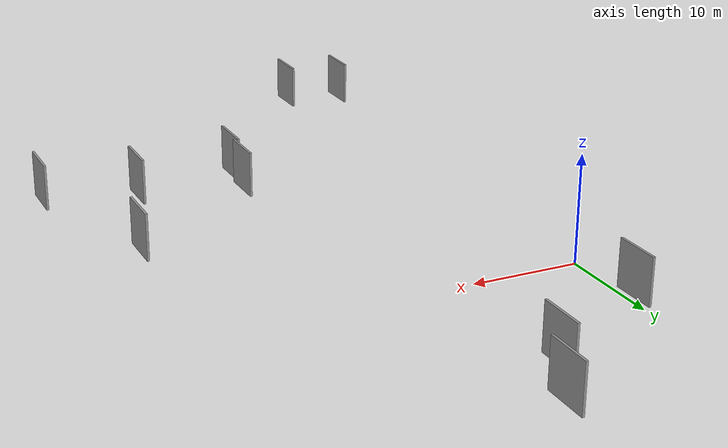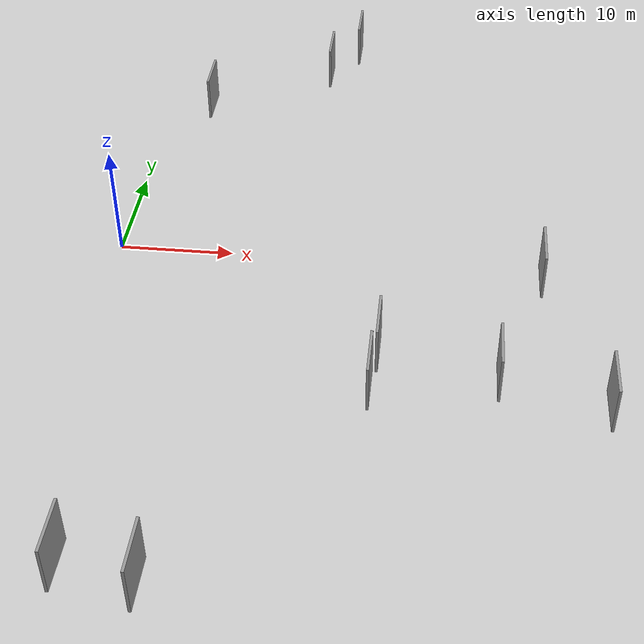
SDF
<sdf version="1.6">
 <world name="default">
  <scene>
   <sky><clouds><speed>12</speed></clouds></sky>
   <ambient>0.4 0.4 0.4 1</ambient>
   <background>0.7 0.7 0.7 1</background>
   <shadows>1</shadows>
  </scene>
  <gravity>0 0 -9.8066</gravity>
  <magnetic_field>6e-06 2.3e-05 -4.2e-05</magnetic_field>
  <physics default="0" name="default_physics" type="ode">
   <ode>
    <solver>
     <type>quick</type>
     <iters>10</iters>
     <sor>1.0</sor>
     <use_dynamic_moi_rescaling>0</use_dynamic_moi_rescaling>
    </solver>
    <constraints>
     <cfm>0</cfm>
     <erp>0.2</erp>
     <contact_max_correcting_vel>100</contact_max_correcting_vel>
     <contact_surface_layer>0.001</contact_surface_layer>
    </constraints>
   </ode>
   <max_step_size>0.004</max_step_size>
   <real_time_factor>1</real_time_factor>
   <real_time_update_rate>250</real_time_update_rate>
  </physics>
  <light name="sun" type="directional">
   <pose>0 0 10 0 0 0</pose>
   <diffuse>0.8 0.8 0.8 1</diffuse>
   <specular>0.2 0.2 0.2 1</specular>
   <attenuation>
    <range>1000</range>
    <constant>0.9</constant>
    <linear>0.01</linear>
    <quadratic>0.001</quadratic>
   </attenuation>
   <direction>-0.5 0.1 -0.9</direction>
  </light>
  <model name="grey_wall_1">
   <static>1</static>
   <pose>5.3921 -37.1609 5.0 0.000000 0.000000 1.570796</pose>
   <link name="link">
    <pose>0 0 2.00 0 0 0</pose>
    <collision name="collision"><geometry><box><size>4.00 0.2 4.00</size></box></geometry></collision>
    <visual name="visual">
     <cast_shadows>0</cast_shadows>
     <geometry><box><size>4.00 0.2 4.00</size></box></geometry>
     <material>
      <script>
       <uri>model://grey_wall/materials/scripts</uri>
       <uri>model://grey_wall/materials/textures</uri>
       <name>vrc/grey_wall</name>
      </script>
     </material>
    </visual>
   </link>
  </model>
  <model name="grey_wall_2">
   <static>1</static>
   <pose>24.0401 -16.4125 5.0 0.000000 0.000000 1.570796</pose>
   <link name="link">
    <pose>0 0 2.00 0 0 0</pose>
    <collision name="collision"><geometry><box><size>4.00 0.2 4.00</size></box></geometry></collision>
    <visual name="visual">
     <cast_shadows>0</cast_shadows>
     <geometry><box><size>4.00 0.2 4.00</size></box></geometry>
     <material>
      <script>
       <uri>model://grey_wall/materials/scripts</uri>
       <uri>model://grey_wall/materials/textures</uri>
       <name>vrc/grey_wall</name>
      </script>
     </material>
    </visual>
   </link>
  </model>
  <model name="grey_wall_3">
   <static>1</static>
   <pose>5.7872 16.0140 5.0 0.000000 0.000000 1.570796</pose>
   <link name="link">
    <pose>0 0 2.00 0 0 0</pose>
    <collision name="collision"><geometry><box><size>4.00 0.2 4.00</size></box></geometry></collision>
    <visual name="visual">
     <cast_shadows>0</cast_shadows>
     <geometry><box><size>4.00 0.2 4.00</size></box></geometry>
     <material>
      <script>
       <uri>model://grey_wall/materials/scripts</uri>
       <uri>model://grey_wall/materials/textures</uri>
       <name>vrc/grey_wall</name>
      </script>
     </material>
    </visual>
   </link>
  </model>
  <model name="grey_wall_4">
   <static>1</static>
   <pose>16.5716 22.6350 5.0 0.000000 0.000000 1.570796</pose>
   <link name="link">
    <pose>0 0 2.00 0 0 0</pose>
    <collision name="collision"><geometry><box><size>4.00 0.2 4.00</size></box></geometry></collision>
    <visual name="visual">
     <cast_shadows>0</cast_shadows>
     <geometry><box><size>4.00 0.2 4.00</size></box></geometry>
     <material>
      <script>
       <uri>model://grey_wall/materials/scripts</uri>
       <uri>model://grey_wall/materials/textures</uri>
       <name>vrc/grey_wall</name>
      </script>
     </material>
    </visual>
   </link>
  </model>
  <model name="grey_wall_5">
   <static>1</static>
   <pose>10.7719 -38.0510 5.0 0.000000 0.000000 1.570796</pose>
   <link name="link">
    <pose>0 0 2.00 0 0 0</pose>
    <collision name="collision"><geometry><box><size>4.00 0.2 4.00</size></box></geometry></collision>
    <visual name="visual">
     <cast_shadows>0</cast_shadows>
     <geometry><box><size>4.00 0.2 4.00</size></box></geometry>
     <material>
      <script>
       <uri>model://grey_wall/materials/scripts</uri>
       <uri>model://grey_wall/materials/textures</uri>
       <name>vrc/grey_wall</name>
      </script>
     </material>
    </visual>
   </link>
  </model>
  <model name="grey_wall_6">
   <static>1</static>
   <pose>36.3868 -6.9663 5.0 0.000000 0.000000 1.570796</pose>
   <link name="link">
    <pose>0 0 2.00 0 0 0</pose>
    <collision name="collision"><geometry><box><size>4.00 0.2 4.00</size></box></geometry></collision>
    <visual name="visual">
     <cast_shadows>0</cast_shadows>
     <geometry><box><size>4.00 0.2 4.00</size></box></geometry>
     <material>
      <script>
       <uri>model://grey_wall/materials/scripts</uri>
       <uri>model://grey_wall/materials/textures</uri>
       <name>vrc/grey_wall</name>
      </script>
     </material>
    </visual>
   </link>
  </model>
  <model name="grey_wall_7">
   <static>1</static>
   <pose>23.6668 -20.2544 5.0 0.000000 0.000000 1.570796</pose>
   <link name="link">
    <pose>0 0 2.00 0 0 0</pose>
    <collision name="collision"><geometry><box><size>4.00 0.2 4.00</size></box></geometry></collision>
    <visual name="visual">
     <cast_shadows>0</cast_shadows>
     <geometry><box><size>4.00 0.2 4.00</size></box></geometry>
     <material>
      <script>
       <uri>model://grey_wall/materials/scripts</uri>
       <uri>model://grey_wall/materials/textures</uri>
       <name>vrc/grey_wall</name>
      </script>
     </material>
    </visual>
   </link>
  </model>
  <model name="grey_wall_8">
   <static>1</static>
   <pose>19.0308 27.2414 5.0 0.000000 0.000000 1.570796</pose>
   <link name="link">
    <pose>0 0 2.00 0 0 0</pose>
    <collision name="collision"><geometry><box><size>4.00 0.2 4.00</size></box></geometry></collision>
    <visual name="visual">
     <cast_shadows>0</cast_shadows>
     <geometry><box><size>4.00 0.2 4.00</size></box></geometry>
     <material>
      <script>
       <uri>model://grey_wall/materials/scripts</uri>
       <uri>model://grey_wall/materials/textures</uri>
       <name>vrc/grey_wall</name>
      </script>
     </material>
    </visual>
   </link>
  </model>
  <model name="grey_wall_9">
   <static>1</static>
   <pose>40.8585 -20.6324 5.0 0.000000 0.000000 1.570796</pose>
   <link name="link">
    <pose>0 0 2.00 0 0 0</pose>
    <collision name="collision"><geometry><box><size>4.00 0.2 4.00</size></box></geometry></collision>
    <visual name="visual">
     <cast_shadows>0</cast_shadows>
     <geometry><box><size>4.00 0.2 4.00</size></box></geometry>
     <material>
      <script>
       <uri>model://grey_wall/materials/scripts</uri>
       <uri>model://grey_wall/materials/textures</uri>
       <name>vrc/grey_wall</name>
      </script>
     </material>
    </visual>
   </link>
  </model>
  <model name="grey_wall_10">
   <static>1</static>
   <pose>32.9634 -18.5240 5.0 0.000000 0.000000 1.570796</pose>
   <link name="link">
    <pose>0 0 2.00 0 0 0</pose>
    <collision name="collision"><geometry><box><size>4.00 0.2 4.00</size></box></geometry></collision>
    <visual name="visual">
     <cast_shadows>0</cast_shadows>
     <geometry><box><size>4.00 0.2 4.00</size></box></geometry>
     <material>
      <script>
       <uri>model://grey_wall/materials/scripts</uri>
       <uri>model://grey_wall/materials/textures</uri>
       <name>vrc/grey_wall</name>
      </script>
     </material>
    </visual>
   </link>
  </model>
 </world>
</sdf>
